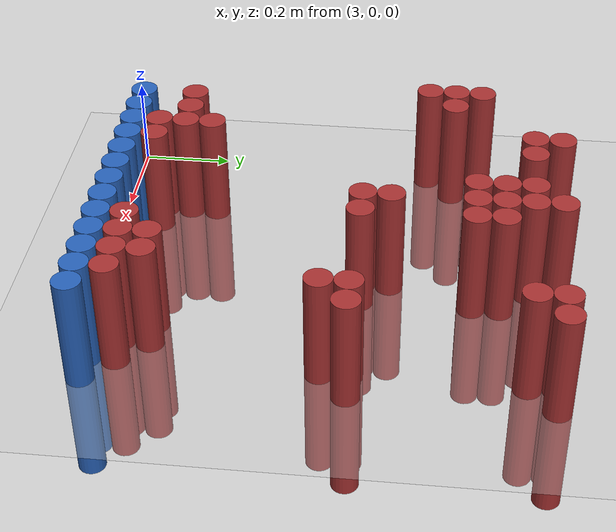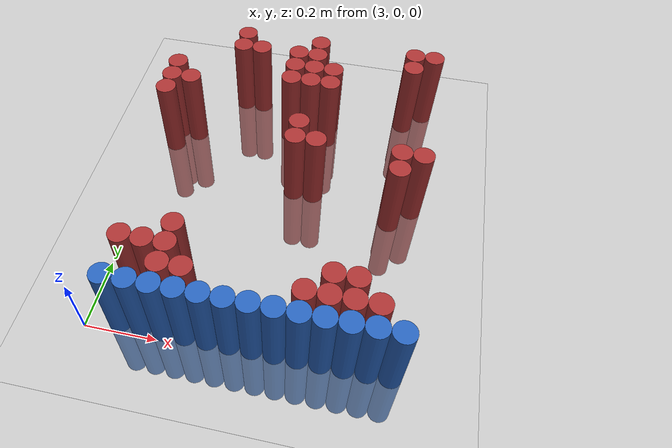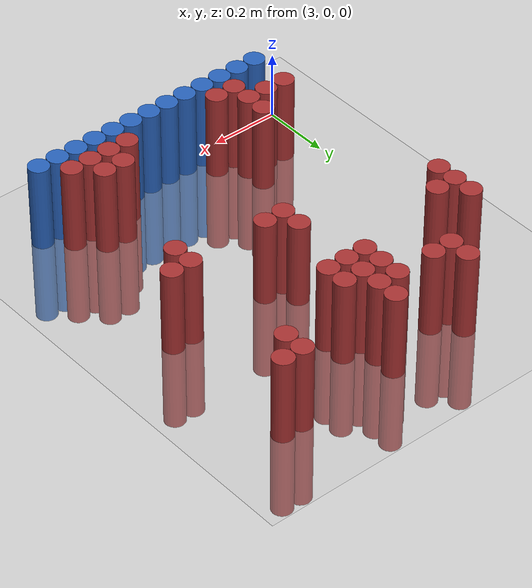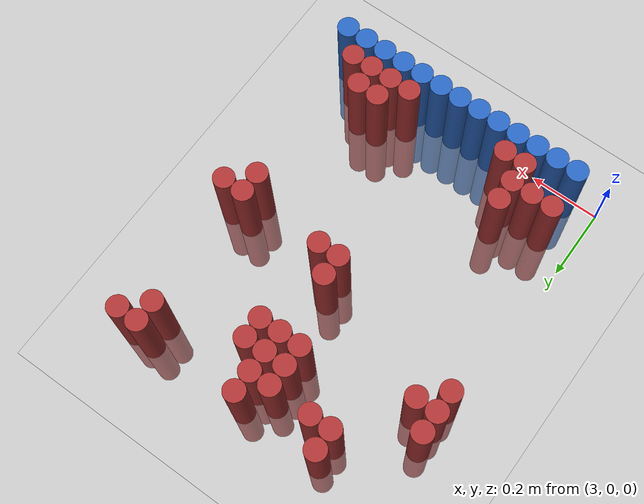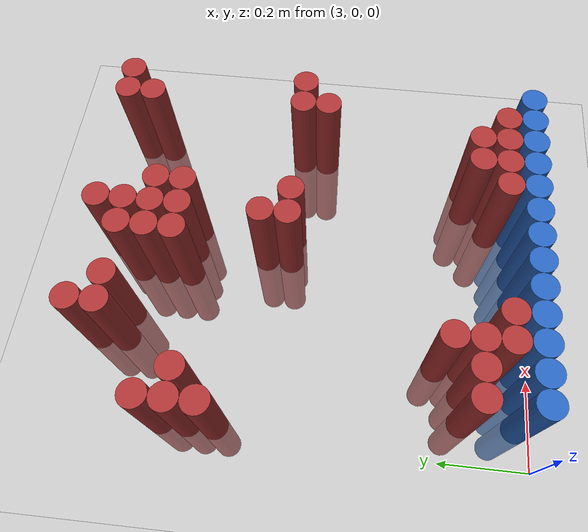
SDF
<sdf version="1.6">
 <world name="default">
  <model name="ground_plane">
   <static>1</static>
   <link name="link">
    <collision name="collision">
     <geometry><plane><normal>0 0 1</normal><size>100 100</size></plane></geometry>
     <surface><friction><ode><mu>100</mu><mu2>50</mu2></ode></friction></surface>
    </collision>
    <visual name="visual">
     <cast_shadows>0</cast_shadows>
     <geometry><plane><normal>0 0 1</normal><size>100 100</size></plane></geometry>
     <material>
      <script><uri>file://media/materials/scripts/gazebo.material</uri><name>Gazebo/Grey</name></script>
     </material>
    </visual>
   </link>
  </model>
  <model name="unit_cylinder_233">
   <static>1</static>
   <pose>3.210000 0.990000 0.000000 0.000000 0.000000 0.000000</pose>
   <link name="link">
    <inertial>
     <mass>1</mass>
     <inertia><ixx>0.145833</ixx><ixy>0</ixy><ixz>0</ixz><iyy>0.145833</iyy><iyz>0</iyz><izz>0.125</izz></inertia>
    </inertial>
    <collision name="collision">
     <geometry><cylinder><radius>0.030000</radius><length>0.5</length></cylinder></geometry>
    </collision>
    <visual name="visual">
     <geometry><cylinder><radius>0.030000</radius><length>0.5</length></cylinder></geometry>
     <material>
      <ambient>0.648000 0.192000 0.192000 1</ambient>
      <diffuse>0.648000 0.192000 0.192000 1</diffuse>
     </material>
     <material>
      <script><name>Gazebo/Grey</name><uri>file://media/materials/scripts/gazebo.material</uri></script>
     </material>
    </visual>
   </link>
  </model>
  <model name="unit_cylinder_234">
   <static>1</static>
   <pose>3.450000 0.990000 0.000000 0.000000 0.000000 0.000000</pose>
   <link name="link">
    <inertial>
     <mass>1</mass>
     <inertia><ixx>0.145833</ixx><ixy>0</ixy><ixz>0</ixz><iyy>0.145833</iyy><iyz>0</iyz><izz>0.125</izz></inertia>
    </inertial>
    <collision name="collision">
     <geometry><cylinder><radius>0.030000</radius><length>0.5</length></cylinder></geometry>
    </collision>
    <visual name="visual">
     <geometry><cylinder><radius>0.030000</radius><length>0.5</length></cylinder></geometry>
     <material>
      <ambient>0.648000 0.192000 0.192000 1</ambient>
      <diffuse>0.648000 0.192000 0.192000 1</diffuse>
     </material>
     <material>
      <script><name>Gazebo/Grey</name><uri>file://media/materials/scripts/gazebo.material</uri></script>
     </material>
    </visual>
   </link>
  </model>
  <model name="unit_cylinder_235">
   <static>1</static>
   <pose>3.750000 0.990000 0.000000 0.000000 0.000000 0.000000</pose>
   <link name="link">
    <inertial>
     <mass>1</mass>
     <inertia><ixx>0.145833</ixx><ixy>0</ixy><ixz>0</ixz><iyy>0.145833</iyy><iyz>0</iyz><izz>0.125</izz></inertia>
    </inertial>
    <collision name="collision">
     <geometry><cylinder><radius>0.030000</radius><length>0.5</length></cylinder></geometry>
    </collision>
    <visual name="visual">
     <geometry><cylinder><radius>0.030000</radius><length>0.5</length></cylinder></geometry>
     <material>
      <ambient>0.648000 0.192000 0.192000 1</ambient>
      <diffuse>0.648000 0.192000 0.192000 1</diffuse>
     </material>
     <material>
      <script><name>Gazebo/Grey</name><uri>file://media/materials/scripts/gazebo.material</uri></script>
     </material>
    </visual>
   </link>
  </model>
  <model name="unit_cylinder_236">
   <static>1</static>
   <pose>3.810000 0.990000 0.000000 0.000000 0.000000 0.000000</pose>
   <link name="link">
    <inertial>
     <mass>1</mass>
     <inertia><ixx>0.145833</ixx><ixy>0</ixy><ixz>0</ixz><iyy>0.145833</iyy><iyz>0</iyz><izz>0.125</izz></inertia>
    </inertial>
    <collision name="collision">
     <geometry><cylinder><radius>0.030000</radius><length>0.5</length></cylinder></geometry>
    </collision>
    <visual name="visual">
     <geometry><cylinder><radius>0.030000</radius><length>0.5</length></cylinder></geometry>
     <material>
      <ambient>0.648000 0.192000 0.192000 1</ambient>
      <diffuse>0.648000 0.192000 0.192000 1</diffuse>
     </material>
     <material>
      <script><name>Gazebo/Grey</name><uri>file://media/materials/scripts/gazebo.material</uri></script>
     </material>
    </visual>
   </link>
  </model>
  <model name="unit_cylinder_243">
   <static>1</static>
   <pose>3.210000 0.930000 0.000000 0.000000 0.000000 0.000000</pose>
   <link name="link">
    <inertial>
     <mass>1</mass>
     <inertia><ixx>0.145833</ixx><ixy>0</ixy><ixz>0</ixz><iyy>0.145833</iyy><iyz>0</iyz><izz>0.125</izz></inertia>
    </inertial>
    <collision name="collision">
     <geometry><cylinder><radius>0.030000</radius><length>0.5</length></cylinder></geometry>
    </collision>
    <visual name="visual">
     <geometry><cylinder><radius>0.030000</radius><length>0.5</length></cylinder></geometry>
     <material>
      <ambient>0.648000 0.192000 0.192000 1</ambient>
      <diffuse>0.648000 0.192000 0.192000 1</diffuse>
     </material>
     <material>
      <script><name>Gazebo/Grey</name><uri>file://media/materials/scripts/gazebo.material</uri></script>
     </material>
    </visual>
   </link>
  </model>
  <model name="unit_cylinder_244">
   <static>1</static>
   <pose>3.270000 0.930000 0.000000 0.000000 0.000000 0.000000</pose>
   <link name="link">
    <inertial>
     <mass>1</mass>
     <inertia><ixx>0.145833</ixx><ixy>0</ixy><ixz>0</ixz><iyy>0.145833</iyy><iyz>0</iyz><izz>0.125</izz></inertia>
    </inertial>
    <collision name="collision">
     <geometry><cylinder><radius>0.030000</radius><length>0.5</length></cylinder></geometry>
    </collision>
    <visual name="visual">
     <geometry><cylinder><radius>0.030000</radius><length>0.5</length></cylinder></geometry>
     <material>
      <ambient>0.648000 0.192000 0.192000 1</ambient>
      <diffuse>0.648000 0.192000 0.192000 1</diffuse>
     </material>
     <material>
      <script><name>Gazebo/Grey</name><uri>file://media/materials/scripts/gazebo.material</uri></script>
     </material>
    </visual>
   </link>
  </model>
  <model name="unit_cylinder_245">
   <static>1</static>
   <pose>3.390000 0.930000 0.000000 0.000000 0.000000 0.000000</pose>
   <link name="link">
    <inertial>
     <mass>1</mass>
     <inertia><ixx>0.145833</ixx><ixy>0</ixy><ixz>0</ixz><iyy>0.145833</iyy><iyz>0</iyz><izz>0.125</izz></inertia>
    </inertial>
    <collision name="collision">
     <geometry><cylinder><radius>0.030000</radius><length>0.5</length></cylinder></geometry>
    </collision>
    <visual name="visual">
     <geometry><cylinder><radius>0.030000</radius><length>0.5</length></cylinder></geometry>
     <material>
      <ambient>0.648000 0.192000 0.192000 1</ambient>
      <diffuse>0.648000 0.192000 0.192000 1</diffuse>
     </material>
     <material>
      <script><name>Gazebo/Grey</name><uri>file://media/materials/scripts/gazebo.material</uri></script>
     </material>
    </visual>
   </link>
  </model>
  <model name="unit_cylinder_246">
   <static>1</static>
   <pose>3.450000 0.930000 0.000000 0.000000 0.000000 0.000000</pose>
   <link name="link">
    <inertial>
     <mass>1</mass>
     <inertia><ixx>0.145833</ixx><ixy>0</ixy><ixz>0</ixz><iyy>0.145833</iyy><iyz>0</iyz><izz>0.125</izz></inertia>
    </inertial>
    <collision name="collision">
     <geometry><cylinder><radius>0.030000</radius><length>0.5</length></cylinder></geometry>
    </collision>
    <visual name="visual">
     <geometry><cylinder><radius>0.030000</radius><length>0.5</length></cylinder></geometry>
     <material>
      <ambient>0.648000 0.192000 0.192000 1</ambient>
      <diffuse>0.648000 0.192000 0.192000 1</diffuse>
     </material>
     <material>
      <script><name>Gazebo/Grey</name><uri>file://media/materials/scripts/gazebo.material</uri></script>
     </material>
    </visual>
   </link>
  </model>
  <model name="unit_cylinder_247">
   <static>1</static>
   <pose>3.750000 0.930000 0.000000 0.000000 0.000000 0.000000</pose>
   <link name="link">
    <inertial>
     <mass>1</mass>
     <inertia><ixx>0.145833</ixx><ixy>0</ixy><ixz>0</ixz><iyy>0.145833</iyy><iyz>0</iyz><izz>0.125</izz></inertia>
    </inertial>
    <collision name="collision">
     <geometry><cylinder><radius>0.030000</radius><length>0.5</length></cylinder></geometry>
    </collision>
    <visual name="visual">
     <geometry><cylinder><radius>0.030000</radius><length>0.5</length></cylinder></geometry>
     <material>
      <ambient>0.648000 0.192000 0.192000 1</ambient>
      <diffuse>0.648000 0.192000 0.192000 1</diffuse>
     </material>
     <material>
      <script><name>Gazebo/Grey</name><uri>file://media/materials/scripts/gazebo.material</uri></script>
     </material>
    </visual>
   </link>
  </model>
  <model name="unit_cylinder_252">
   <static>1</static>
   <pose>3.390000 0.870000 0.000000 0.000000 0.000000 0.000000</pose>
   <link name="link">
    <inertial>
     <mass>1</mass>
     <inertia><ixx>0.145833</ixx><ixy>0</ixy><ixz>0</ixz><iyy>0.145833</iyy><iyz>0</iyz><izz>0.125</izz></inertia>
    </inertial>
    <collision name="collision">
     <geometry><cylinder><radius>0.030000</radius><length>0.5</length></cylinder></geometry>
    </collision>
    <visual name="visual">
     <geometry><cylinder><radius>0.030000</radius><length>0.5</length></cylinder></geometry>
     <material>
      <ambient>0.648000 0.192000 0.192000 1</ambient>
      <diffuse>0.648000 0.192000 0.192000 1</diffuse>
     </material>
     <material>
      <script><name>Gazebo/Grey</name><uri>file://media/materials/scripts/gazebo.material</uri></script>
     </material>
    </visual>
   </link>
  </model>
  <model name="unit_cylinder_253">
   <static>1</static>
   <pose>3.450000 0.870000 0.000000 0.000000 0.000000 0.000000</pose>
   <link name="link">
    <inertial>
     <mass>1</mass>
     <inertia><ixx>0.145833</ixx><ixy>0</ixy><ixz>0</ixz><iyy>0.145833</iyy><iyz>0</iyz><izz>0.125</izz></inertia>
    </inertial>
    <collision name="collision">
     <geometry><cylinder><radius>0.030000</radius><length>0.5</length></cylinder></geometry>
    </collision>
    <visual name="visual">
     <geometry><cylinder><radius>0.030000</radius><length>0.5</length></cylinder></geometry>
     <material>
      <ambient>0.648000 0.192000 0.192000 1</ambient>
      <diffuse>0.648000 0.192000 0.192000 1</diffuse>
     </material>
     <material>
      <script><name>Gazebo/Grey</name><uri>file://media/materials/scripts/gazebo.material</uri></script>
     </material>
    </visual>
   </link>
  </model>
  <model name="unit_cylinder_254">
   <static>1</static>
   <pose>3.510000 0.870000 0.000000 0.000000 0.000000 0.000000</pose>
   <link name="link">
    <inertial>
     <mass>1</mass>
     <inertia><ixx>0.145833</ixx><ixy>0</ixy><ixz>0</ixz><iyy>0.145833</iyy><iyz>0</iyz><izz>0.125</izz></inertia>
    </inertial>
    <collision name="collision">
     <geometry><cylinder><radius>0.030000</radius><length>0.5</length></cylinder></geometry>
    </collision>
    <visual name="visual">
     <geometry><cylinder><radius>0.030000</radius><length>0.5</length></cylinder></geometry>
     <material>
      <ambient>0.648000 0.192000 0.192000 1</ambient>
      <diffuse>0.648000 0.192000 0.192000 1</diffuse>
     </material>
     <material>
      <script><name>Gazebo/Grey</name><uri>file://media/materials/scripts/gazebo.material</uri></script>
     </material>
    </visual>
   </link>
  </model>
  <model name="unit_cylinder_257">
   <static>1</static>
   <pose>3.030000 0.810000 0.000000 0.000000 0.000000 0.000000</pose>
   <link name="link">
    <inertial>
     <mass>1</mass>
     <inertia><ixx>0.145833</ixx><ixy>0</ixy><ixz>0</ixz><iyy>0.145833</iyy><iyz>0</iyz><izz>0.125</izz></inertia>
    </inertial>
    <collision name="collision">
     <geometry><cylinder><radius>0.030000</radius><length>0.5</length></cylinder></geometry>
    </collision>
    <visual name="visual">
     <geometry><cylinder><radius>0.030000</radius><length>0.5</length></cylinder></geometry>
     <material>
      <ambient>0.648000 0.192000 0.192000 1</ambient>
      <diffuse>0.648000 0.192000 0.192000 1</diffuse>
     </material>
     <material>
      <script><name>Gazebo/Grey</name><uri>file://media/materials/scripts/gazebo.material</uri></script>
     </material>
    </visual>
   </link>
  </model>
  <model name="unit_cylinder_258">
   <static>1</static>
   <pose>3.390000 0.810000 0.000000 0.000000 0.000000 0.000000</pose>
   <link name="link">
    <inertial>
     <mass>1</mass>
     <inertia><ixx>0.145833</ixx><ixy>0</ixy><ixz>0</ixz><iyy>0.145833</iyy><iyz>0</iyz><izz>0.125</izz></inertia>
    </inertial>
    <collision name="collision">
     <geometry><cylinder><radius>0.030000</radius><length>0.5</length></cylinder></geometry>
    </collision>
    <visual name="visual">
     <geometry><cylinder><radius>0.030000</radius><length>0.5</length></cylinder></geometry>
     <material>
      <ambient>0.648000 0.192000 0.192000 1</ambient>
      <diffuse>0.648000 0.192000 0.192000 1</diffuse>
     </material>
     <material>
      <script><name>Gazebo/Grey</name><uri>file://media/materials/scripts/gazebo.material</uri></script>
     </material>
    </visual>
   </link>
  </model>
  <model name="unit_cylinder_259">
   <static>1</static>
   <pose>3.450000 0.810000 0.000000 0.000000 0.000000 0.000000</pose>
   <link name="link">
    <inertial>
     <mass>1</mass>
     <inertia><ixx>0.145833</ixx><ixy>0</ixy><ixz>0</ixz><iyy>0.145833</iyy><iyz>0</iyz><izz>0.125</izz></inertia>
    </inertial>
    <collision name="collision">
     <geometry><cylinder><radius>0.030000</radius><length>0.5</length></cylinder></geometry>
    </collision>
    <visual name="visual">
     <geometry><cylinder><radius>0.030000</radius><length>0.5</length></cylinder></geometry>
     <material>
      <ambient>0.648000 0.192000 0.192000 1</ambient>
      <diffuse>0.648000 0.192000 0.192000 1</diffuse>
     </material>
     <material>
      <script><name>Gazebo/Grey</name><uri>file://media/materials/scripts/gazebo.material</uri></script>
     </material>
    </visual>
   </link>
  </model>
  <model name="unit_cylinder_260">
   <static>1</static>
   <pose>3.510000 0.810000 0.000000 0.000000 0.000000 0.000000</pose>
   <link name="link">
    <inertial>
     <mass>1</mass>
     <inertia><ixx>0.145833</ixx><ixy>0</ixy><ixz>0</ixz><iyy>0.145833</iyy><iyz>0</iyz><izz>0.125</izz></inertia>
    </inertial>
    <collision name="collision">
     <geometry><cylinder><radius>0.030000</radius><length>0.5</length></cylinder></geometry>
    </collision>
    <visual name="visual">
     <geometry><cylinder><radius>0.030000</radius><length>0.5</length></cylinder></geometry>
     <material>
      <ambient>0.648000 0.192000 0.192000 1</ambient>
      <diffuse>0.648000 0.192000 0.192000 1</diffuse>
     </material>
     <material>
      <script><name>Gazebo/Grey</name><uri>file://media/materials/scripts/gazebo.material</uri></script>
     </material>
    </visual>
   </link>
  </model>
  <model name="unit_cylinder_263">
   <static>1</static>
   <pose>3.030000 0.750000 0.000000 0.000000 0.000000 0.000000</pose>
   <link name="link">
    <inertial>
     <mass>1</mass>
     <inertia><ixx>0.145833</ixx><ixy>0</ixy><ixz>0</ixz><iyy>0.145833</iyy><iyz>0</iyz><izz>0.125</izz></inertia>
    </inertial>
    <collision name="collision">
     <geometry><cylinder><radius>0.030000</radius><length>0.5</length></cylinder></geometry>
    </collision>
    <visual name="visual">
     <geometry><cylinder><radius>0.030000</radius><length>0.5</length></cylinder></geometry>
     <material>
      <ambient>0.648000 0.192000 0.192000 1</ambient>
      <diffuse>0.648000 0.192000 0.192000 1</diffuse>
     </material>
     <material>
      <script><name>Gazebo/Grey</name><uri>file://media/materials/scripts/gazebo.material</uri></script>
     </material>
    </visual>
   </link>
  </model>
  <model name="unit_cylinder_264">
   <static>1</static>
   <pose>3.090000 0.750000 0.000000 0.000000 0.000000 0.000000</pose>
   <link name="link">
    <inertial>
     <mass>1</mass>
     <inertia><ixx>0.145833</ixx><ixy>0</ixy><ixz>0</ixz><iyy>0.145833</iyy><iyz>0</iyz><izz>0.125</izz></inertia>
    </inertial>
    <collision name="collision">
     <geometry><cylinder><radius>0.030000</radius><length>0.5</length></cylinder></geometry>
    </collision>
    <visual name="visual">
     <geometry><cylinder><radius>0.030000</radius><length>0.5</length></cylinder></geometry>
     <material>
      <ambient>0.648000 0.192000 0.192000 1</ambient>
      <diffuse>0.648000 0.192000 0.192000 1</diffuse>
     </material>
     <material>
      <script><name>Gazebo/Grey</name><uri>file://media/materials/scripts/gazebo.material</uri></script>
     </material>
    </visual>
   </link>
  </model>
  <model name="unit_cylinder_268">
   <static>1</static>
   <pose>3.030000 0.690000 0.000000 0.000000 0.000000 0.000000</pose>
   <link name="link">
    <inertial>
     <mass>1</mass>
     <inertia><ixx>0.145833</ixx><ixy>0</ixy><ixz>0</ixz><iyy>0.145833</iyy><iyz>0</iyz><izz>0.125</izz></inertia>
    </inertial>
    <collision name="collision">
     <geometry><cylinder><radius>0.030000</radius><length>0.5</length></cylinder></geometry>
    </collision>
    <visual name="visual">
     <geometry><cylinder><radius>0.030000</radius><length>0.5</length></cylinder></geometry>
     <material>
      <ambient>0.648000 0.192000 0.192000 1</ambient>
      <diffuse>0.648000 0.192000 0.192000 1</diffuse>
     </material>
     <material>
      <script><name>Gazebo/Grey</name><uri>file://media/materials/scripts/gazebo.material</uri></script>
     </material>
    </visual>
   </link>
  </model>
  <model name="unit_cylinder_270">
   <static>1</static>
   <pose>3.450000 0.630000 0.000000 0.000000 0.000000 0.000000</pose>
   <link name="link">
    <inertial>
     <mass>1</mass>
     <inertia><ixx>0.145833</ixx><ixy>0</ixy><ixz>0</ixz><iyy>0.145833</iyy><iyz>0</iyz><izz>0.125</izz></inertia>
    </inertial>
    <collision name="collision">
     <geometry><cylinder><radius>0.030000</radius><length>0.5</length></cylinder></geometry>
    </collision>
    <visual name="visual">
     <geometry><cylinder><radius>0.030000</radius><length>0.5</length></cylinder></geometry>
     <material>
      <ambient>0.648000 0.192000 0.192000 1</ambient>
      <diffuse>0.648000 0.192000 0.192000 1</diffuse>
     </material>
     <material>
      <script><name>Gazebo/Grey</name><uri>file://media/materials/scripts/gazebo.material</uri></script>
     </material>
    </visual>
   </link>
  </model>
  <model name="unit_cylinder_271">
   <static>1</static>
   <pose>3.450000 0.570000 0.000000 0.000000 0.000000 0.000000</pose>
   <link name="link">
    <inertial>
     <mass>1</mass>
     <inertia><ixx>0.145833</ixx><ixy>0</ixy><ixz>0</ixz><iyy>0.145833</iyy><iyz>0</iyz><izz>0.125</izz></inertia>
    </inertial>
    <collision name="collision">
     <geometry><cylinder><radius>0.030000</radius><length>0.5</length></cylinder></geometry>
    </collision>
    <visual name="visual">
     <geometry><cylinder><radius>0.030000</radius><length>0.5</length></cylinder></geometry>
     <material>
      <ambient>0.648000 0.192000 0.192000 1</ambient>
      <diffuse>0.648000 0.192000 0.192000 1</diffuse>
     </material>
     <material>
      <script><name>Gazebo/Grey</name><uri>file://media/materials/scripts/gazebo.material</uri></script>
     </material>
    </visual>
   </link>
  </model>
  <model name="unit_cylinder_272">
   <static>1</static>
   <pose>3.510000 0.570000 0.000000 0.000000 0.000000 0.000000</pose>
   <link name="link">
    <inertial>
     <mass>1</mass>
     <inertia><ixx>0.145833</ixx><ixy>0</ixy><ixz>0</ixz><iyy>0.145833</iyy><iyz>0</iyz><izz>0.125</izz></inertia>
    </inertial>
    <collision name="collision">
     <geometry><cylinder><radius>0.030000</radius><length>0.5</length></cylinder></geometry>
    </collision>
    <visual name="visual">
     <geometry><cylinder><radius>0.030000</radius><length>0.5</length></cylinder></geometry>
     <material>
      <ambient>0.648000 0.192000 0.192000 1</ambient>
      <diffuse>0.648000 0.192000 0.192000 1</diffuse>
     </material>
     <material>
      <script><name>Gazebo/Grey</name><uri>file://media/materials/scripts/gazebo.material</uri></script>
     </material>
    </visual>
   </link>
  </model>
  <model name="unit_cylinder_273">
   <static>1</static>
   <pose>3.750000 0.570000 0.000000 0.000000 0.000000 0.000000</pose>
   <link name="link">
    <inertial>
     <mass>1</mass>
     <inertia><ixx>0.145833</ixx><ixy>0</ixy><ixz>0</ixz><iyy>0.145833</iyy><iyz>0</iyz><izz>0.125</izz></inertia>
    </inertial>
    <collision name="collision">
     <geometry><cylinder><radius>0.030000</radius><length>0.5</length></cylinder></geometry>
    </collision>
    <visual name="visual">
     <geometry><cylinder><radius>0.030000</radius><length>0.5</length></cylinder></geometry>
     <material>
      <ambient>0.648000 0.192000 0.192000 1</ambient>
      <diffuse>0.648000 0.192000 0.192000 1</diffuse>
     </material>
     <material>
      <script><name>Gazebo/Grey</name><uri>file://media/materials/scripts/gazebo.material</uri></script>
     </material>
    </visual>
   </link>
  </model>
  <model name="unit_cylinder_274">
   <static>1</static>
   <pose>3.810000 0.570000 0.000000 0.000000 0.000000 0.000000</pose>
   <link name="link">
    <inertial>
     <mass>1</mass>
     <inertia><ixx>0.145833</ixx><ixy>0</ixy><ixz>0</ixz><iyy>0.145833</iyy><iyz>0</iyz><izz>0.125</izz></inertia>
    </inertial>
    <collision name="collision">
     <geometry><cylinder><radius>0.030000</radius><length>0.5</length></cylinder></geometry>
    </collision>
    <visual name="visual">
     <geometry><cylinder><radius>0.030000</radius><length>0.5</length></cylinder></geometry>
     <material>
      <ambient>0.648000 0.192000 0.192000 1</ambient>
      <diffuse>0.648000 0.192000 0.192000 1</diffuse>
     </material>
     <material>
      <script><name>Gazebo/Grey</name><uri>file://media/materials/scripts/gazebo.material</uri></script>
     </material>
    </visual>
   </link>
  </model>
  <model name="unit_cylinder_275">
   <static>1</static>
   <pose>3.750000 0.510000 0.000000 0.000000 0.000000 0.000000</pose>
   <link name="link">
    <inertial>
     <mass>1</mass>
     <inertia><ixx>0.145833</ixx><ixy>0</ixy><ixz>0</ixz><iyy>0.145833</iyy><iyz>0</iyz><izz>0.125</izz></inertia>
    </inertial>
    <collision name="collision">
     <geometry><cylinder><radius>0.030000</radius><length>0.5</length></cylinder></geometry>
    </collision>
    <visual name="visual">
     <geometry><cylinder><radius>0.030000</radius><length>0.5</length></cylinder></geometry>
     <material>
      <ambient>0.648000 0.192000 0.192000 1</ambient>
      <diffuse>0.648000 0.192000 0.192000 1</diffuse>
     </material>
     <material>
      <script><name>Gazebo/Grey</name><uri>file://media/materials/scripts/gazebo.material</uri></script>
     </material>
    </visual>
   </link>
  </model>
  <model name="unit_cylinder_290">
   <static>1</static>
   <pose>3.210000 0.210000 0.000000 0.000000 0.000000 0.000000</pose>
   <link name="link">
    <inertial>
     <mass>1</mass>
     <inertia><ixx>0.145833</ixx><ixy>0</ixy><ixz>0</ixz><iyy>0.145833</iyy><iyz>0</iyz><izz>0.125</izz></inertia>
    </inertial>
    <collision name="collision">
     <geometry><cylinder><radius>0.030000</radius><length>0.5</length></cylinder></geometry>
    </collision>
    <visual name="visual">
     <geometry><cylinder><radius>0.030000</radius><length>0.5</length></cylinder></geometry>
     <material>
      <ambient>0.648000 0.192000 0.192000 1</ambient>
      <diffuse>0.648000 0.192000 0.192000 1</diffuse>
     </material>
     <material>
      <script><name>Gazebo/Grey</name><uri>file://media/materials/scripts/gazebo.material</uri></script>
     </material>
    </visual>
   </link>
  </model>
  <model name="unit_cylinder_298">
   <static>1</static>
   <pose>3.090000 0.150000 0.000000 0.000000 0.000000 0.000000</pose>
   <link name="link">
    <inertial>
     <mass>1</mass>
     <inertia><ixx>0.145833</ixx><ixy>0</ixy><ixz>0</ixz><iyy>0.145833</iyy><iyz>0</iyz><izz>0.125</izz></inertia>
    </inertial>
    <collision name="collision">
     <geometry><cylinder><radius>0.030000</radius><length>0.5</length></cylinder></geometry>
    </collision>
    <visual name="visual">
     <geometry><cylinder><radius>0.030000</radius><length>0.5</length></cylinder></geometry>
     <material>
      <ambient>0.648000 0.192000 0.192000 1</ambient>
      <diffuse>0.648000 0.192000 0.192000 1</diffuse>
     </material>
     <material>
      <script><name>Gazebo/Grey</name><uri>file://media/materials/scripts/gazebo.material</uri></script>
     </material>
    </visual>
   </link>
  </model>
  <model name="unit_cylinder_299">
   <static>1</static>
   <pose>3.150000 0.150000 0.000000 0.000000 0.000000 0.000000</pose>
   <link name="link">
    <inertial>
     <mass>1</mass>
     <inertia><ixx>0.145833</ixx><ixy>0</ixy><ixz>0</ixz><iyy>0.145833</iyy><iyz>0</iyz><izz>0.125</izz></inertia>
    </inertial>
    <collision name="collision">
     <geometry><cylinder><radius>0.030000</radius><length>0.5</length></cylinder></geometry>
    </collision>
    <visual name="visual">
     <geometry><cylinder><radius>0.030000</radius><length>0.5</length></cylinder></geometry>
     <material>
      <ambient>0.648000 0.192000 0.192000 1</ambient>
      <diffuse>0.648000 0.192000 0.192000 1</diffuse>
     </material>
     <material>
      <script><name>Gazebo/Grey</name><uri>file://media/materials/scripts/gazebo.material</uri></script>
     </material>
    </visual>
   </link>
  </model>
  <model name="unit_cylinder_300">
   <static>1</static>
   <pose>3.210000 0.150000 0.000000 0.000000 0.000000 0.000000</pose>
   <link name="link">
    <inertial>
     <mass>1</mass>
     <inertia><ixx>0.145833</ixx><ixy>0</ixy><ixz>0</ixz><iyy>0.145833</iyy><iyz>0</iyz><izz>0.125</izz></inertia>
    </inertial>
    <collision name="collision">
     <geometry><cylinder><radius>0.030000</radius><length>0.5</length></cylinder></geometry>
    </collision>
    <visual name="visual">
     <geometry><cylinder><radius>0.030000</radius><length>0.5</length></cylinder></geometry>
     <material>
      <ambient>0.648000 0.192000 0.192000 1</ambient>
      <diffuse>0.648000 0.192000 0.192000 1</diffuse>
     </material>
     <material>
      <script><name>Gazebo/Grey</name><uri>file://media/materials/scripts/gazebo.material</uri></script>
     </material>
    </visual>
   </link>
  </model>
  <model name="unit_cylinder_301">
   <static>1</static>
   <pose>3.630000 0.150000 0.000000 0.000000 0.000000 0.000000</pose>
   <link name="link">
    <inertial>
     <mass>1</mass>
     <inertia><ixx>0.145833</ixx><ixy>0</ixy><ixz>0</ixz><iyy>0.145833</iyy><iyz>0</iyz><izz>0.125</izz></inertia>
    </inertial>
    <collision name="collision">
     <geometry><cylinder><radius>0.030000</radius><length>0.5</length></cylinder></geometry>
    </collision>
    <visual name="visual">
     <geometry><cylinder><radius>0.030000</radius><length>0.5</length></cylinder></geometry>
     <material>
      <ambient>0.648000 0.192000 0.192000 1</ambient>
      <diffuse>0.648000 0.192000 0.192000 1</diffuse>
     </material>
     <material>
      <script><name>Gazebo/Grey</name><uri>file://media/materials/scripts/gazebo.material</uri></script>
     </material>
    </visual>
   </link>
  </model>
  <model name="unit_cylinder_302">
   <static>1</static>
   <pose>3.690000 0.150000 0.000000 0.000000 0.000000 0.000000</pose>
   <link name="link">
    <inertial>
     <mass>1</mass>
     <inertia><ixx>0.145833</ixx><ixy>0</ixy><ixz>0</ixz><iyy>0.145833</iyy><iyz>0</iyz><izz>0.125</izz></inertia>
    </inertial>
    <collision name="collision">
     <geometry><cylinder><radius>0.030000</radius><length>0.5</length></cylinder></geometry>
    </collision>
    <visual name="visual">
     <geometry><cylinder><radius>0.030000</radius><length>0.5</length></cylinder></geometry>
     <material>
      <ambient>0.648000 0.192000 0.192000 1</ambient>
      <diffuse>0.648000 0.192000 0.192000 1</diffuse>
     </material>
     <material>
      <script><name>Gazebo/Grey</name><uri>file://media/materials/scripts/gazebo.material</uri></script>
     </material>
    </visual>
   </link>
  </model>
  <model name="unit_cylinder_314">
   <static>1</static>
   <pose>3.210000 0.090000 0.000000 0.000000 0.000000 0.000000</pose>
   <link name="link">
    <inertial>
     <mass>1</mass>
     <inertia><ixx>0.145833</ixx><ixy>0</ixy><ixz>0</ixz><iyy>0.145833</iyy><iyz>0</iyz><izz>0.125</izz></inertia>
    </inertial>
    <collision name="collision">
     <geometry><cylinder><radius>0.030000</radius><length>0.5</length></cylinder></geometry>
    </collision>
    <visual name="visual">
     <geometry><cylinder><radius>0.030000</radius><length>0.5</length></cylinder></geometry>
     <material>
      <ambient>0.648000 0.192000 0.192000 1</ambient>
      <diffuse>0.648000 0.192000 0.192000 1</diffuse>
     </material>
     <material>
      <script><name>Gazebo/Grey</name><uri>file://media/materials/scripts/gazebo.material</uri></script>
     </material>
    </visual>
   </link>
  </model>
  <model name="unit_cylinder_315">
   <static>1</static>
   <pose>3.270000 0.090000 0.000000 0.000000 0.000000 0.000000</pose>
   <link name="link">
    <inertial>
     <mass>1</mass>
     <inertia><ixx>0.145833</ixx><ixy>0</ixy><ixz>0</ixz><iyy>0.145833</iyy><iyz>0</iyz><izz>0.125</izz></inertia>
    </inertial>
    <collision name="collision">
     <geometry><cylinder><radius>0.030000</radius><length>0.5</length></cylinder></geometry>
    </collision>
    <visual name="visual">
     <geometry><cylinder><radius>0.030000</radius><length>0.5</length></cylinder></geometry>
     <material>
      <ambient>0.648000 0.192000 0.192000 1</ambient>
      <diffuse>0.648000 0.192000 0.192000 1</diffuse>
     </material>
     <material>
      <script><name>Gazebo/Grey</name><uri>file://media/materials/scripts/gazebo.material</uri></script>
     </material>
    </visual>
   </link>
  </model>
  <model name="unit_cylinder_316">
   <static>1</static>
   <pose>3.570000 0.090000 0.000000 0.000000 0.000000 0.000000</pose>
   <link name="link">
    <inertial>
     <mass>1</mass>
     <inertia><ixx>0.145833</ixx><ixy>0</ixy><ixz>0</ixz><iyy>0.145833</iyy><iyz>0</iyz><izz>0.125</izz></inertia>
    </inertial>
    <collision name="collision">
     <geometry><cylinder><radius>0.030000</radius><length>0.5</length></cylinder></geometry>
    </collision>
    <visual name="visual">
     <geometry><cylinder><radius>0.030000</radius><length>0.5</length></cylinder></geometry>
     <material>
      <ambient>0.648000 0.192000 0.192000 1</ambient>
      <diffuse>0.648000 0.192000 0.192000 1</diffuse>
     </material>
     <material>
      <script><name>Gazebo/Grey</name><uri>file://media/materials/scripts/gazebo.material</uri></script>
     </material>
    </visual>
   </link>
  </model>
  <model name="unit_cylinder_317">
   <static>1</static>
   <pose>3.630000 0.090000 0.000000 0.000000 0.000000 0.000000</pose>
   <link name="link">
    <inertial>
     <mass>1</mass>
     <inertia><ixx>0.145833</ixx><ixy>0</ixy><ixz>0</ixz><iyy>0.145833</iyy><iyz>0</iyz><izz>0.125</izz></inertia>
    </inertial>
    <collision name="collision">
     <geometry><cylinder><radius>0.030000</radius><length>0.5</length></cylinder></geometry>
    </collision>
    <visual name="visual">
     <geometry><cylinder><radius>0.030000</radius><length>0.5</length></cylinder></geometry>
     <material>
      <ambient>0.648000 0.192000 0.192000 1</ambient>
      <diffuse>0.648000 0.192000 0.192000 1</diffuse>
     </material>
     <material>
      <script><name>Gazebo/Grey</name><uri>file://media/materials/scripts/gazebo.material</uri></script>
     </material>
    </visual>
   </link>
  </model>
  <model name="unit_cylinder_318">
   <static>1</static>
   <pose>3.690000 0.090000 0.000000 0.000000 0.000000 0.000000</pose>
   <link name="link">
    <inertial>
     <mass>1</mass>
     <inertia><ixx>0.145833</ixx><ixy>0</ixy><ixz>0</ixz><iyy>0.145833</iyy><iyz>0</iyz><izz>0.125</izz></inertia>
    </inertial>
    <collision name="collision">
     <geometry><cylinder><radius>0.030000</radius><length>0.5</length></cylinder></geometry>
    </collision>
    <visual name="visual">
     <geometry><cylinder><radius>0.030000</radius><length>0.5</length></cylinder></geometry>
     <material>
      <ambient>0.648000 0.192000 0.192000 1</ambient>
      <diffuse>0.648000 0.192000 0.192000 1</diffuse>
     </material>
     <material>
      <script><name>Gazebo/Grey</name><uri>file://media/materials/scripts/gazebo.material</uri></script>
     </material>
    </visual>
   </link>
  </model>
  <model name="unit_cylinder_319">
   <static>1</static>
   <pose>3.750000 0.090000 0.000000 0.000000 0.000000 0.000000</pose>
   <link name="link">
    <inertial>
     <mass>1</mass>
     <inertia><ixx>0.145833</ixx><ixy>0</ixy><ixz>0</ixz><iyy>0.145833</iyy><iyz>0</iyz><izz>0.125</izz></inertia>
    </inertial>
    <collision name="collision">
     <geometry><cylinder><radius>0.030000</radius><length>0.5</length></cylinder></geometry>
    </collision>
    <visual name="visual">
     <geometry><cylinder><radius>0.030000</radius><length>0.5</length></cylinder></geometry>
     <material>
      <ambient>0.648000 0.192000 0.192000 1</ambient>
      <diffuse>0.648000 0.192000 0.192000 1</diffuse>
     </material>
     <material>
      <script><name>Gazebo/Grey</name><uri>file://media/materials/scripts/gazebo.material</uri></script>
     </material>
    </visual>
   </link>
  </model>
  <model name="unit_cylinder_337">
   <static>1</static>
   <pose>3.090000 0.030000 0.000000 0.000000 0.000000 0.000000</pose>
   <link name="link">
    <inertial>
     <mass>1</mass>
     <inertia><ixx>0.145833</ixx><ixy>0</ixy><ixz>0</ixz><iyy>0.145833</iyy><iyz>0</iyz><izz>0.125</izz></inertia>
    </inertial>
    <collision name="collision">
     <geometry><cylinder><radius>0.030000</radius><length>0.5</length></cylinder></geometry>
    </collision>
    <visual name="visual">
     <geometry><cylinder><radius>0.030000</radius><length>0.5</length></cylinder></geometry>
     <material>
      <ambient>0.152000 0.379000 0.720000 1</ambient>
      <diffuse>0.152000 0.379000 0.720000 1</diffuse>
     </material>
     <material>
      <script><name>Gazebo/Grey</name><uri>file://media/materials/scripts/gazebo.material</uri></script>
     </material>
    </visual>
   </link>
  </model>
  <model name="unit_cylinder_338">
   <static>1</static>
   <pose>3.150000 0.030000 0.000000 0.000000 0.000000 0.000000</pose>
   <link name="link">
    <inertial>
     <mass>1</mass>
     <inertia><ixx>0.145833</ixx><ixy>0</ixy><ixz>0</ixz><iyy>0.145833</iyy><iyz>0</iyz><izz>0.125</izz></inertia>
    </inertial>
    <collision name="collision">
     <geometry><cylinder><radius>0.030000</radius><length>0.5</length></cylinder></geometry>
    </collision>
    <visual name="visual">
     <geometry><cylinder><radius>0.030000</radius><length>0.5</length></cylinder></geometry>
     <material>
      <ambient>0.152000 0.379000 0.720000 1</ambient>
      <diffuse>0.152000 0.379000 0.720000 1</diffuse>
     </material>
     <material>
      <script><name>Gazebo/Grey</name><uri>file://media/materials/scripts/gazebo.material</uri></script>
     </material>
    </visual>
   </link>
  </model>
  <model name="unit_cylinder_339">
   <static>1</static>
   <pose>3.210000 0.030000 0.000000 0.000000 0.000000 0.000000</pose>
   <link name="link">
    <inertial>
     <mass>1</mass>
     <inertia><ixx>0.145833</ixx><ixy>0</ixy><ixz>0</ixz><iyy>0.145833</iyy><iyz>0</iyz><izz>0.125</izz></inertia>
    </inertial>
    <collision name="collision">
     <geometry><cylinder><radius>0.030000</radius><length>0.5</length></cylinder></geometry>
    </collision>
    <visual name="visual">
     <geometry><cylinder><radius>0.030000</radius><length>0.5</length></cylinder></geometry>
     <material>
      <ambient>0.152000 0.379000 0.720000 1</ambient>
      <diffuse>0.152000 0.379000 0.720000 1</diffuse>
     </material>
     <material>
      <script><name>Gazebo/Grey</name><uri>file://media/materials/scripts/gazebo.material</uri></script>
     </material>
    </visual>
   </link>
  </model>
  <model name="unit_cylinder_340">
   <static>1</static>
   <pose>3.270000 0.030000 0.000000 0.000000 0.000000 0.000000</pose>
   <link name="link">
    <inertial>
     <mass>1</mass>
     <inertia><ixx>0.145833</ixx><ixy>0</ixy><ixz>0</ixz><iyy>0.145833</iyy><iyz>0</iyz><izz>0.125</izz></inertia>
    </inertial>
    <collision name="collision">
     <geometry><cylinder><radius>0.030000</radius><length>0.5</length></cylinder></geometry>
    </collision>
    <visual name="visual">
     <geometry><cylinder><radius>0.030000</radius><length>0.5</length></cylinder></geometry>
     <material>
      <ambient>0.152000 0.379000 0.720000 1</ambient>
      <diffuse>0.152000 0.379000 0.720000 1</diffuse>
     </material>
     <material>
      <script><name>Gazebo/Grey</name><uri>file://media/materials/scripts/gazebo.material</uri></script>
     </material>
    </visual>
   </link>
  </model>
  <model name="unit_cylinder_341">
   <static>1</static>
   <pose>3.330000 0.030000 0.000000 0.000000 0.000000 0.000000</pose>
   <link name="link">
    <inertial>
     <mass>1</mass>
     <inertia><ixx>0.145833</ixx><ixy>0</ixy><ixz>0</ixz><iyy>0.145833</iyy><iyz>0</iyz><izz>0.125</izz></inertia>
    </inertial>
    <collision name="collision">
     <geometry><cylinder><radius>0.030000</radius><length>0.5</length></cylinder></geometry>
    </collision>
    <visual name="visual">
     <geometry><cylinder><radius>0.030000</radius><length>0.5</length></cylinder></geometry>
     <material>
      <ambient>0.152000 0.379000 0.720000 1</ambient>
      <diffuse>0.152000 0.379000 0.720000 1</diffuse>
     </material>
     <material>
      <script><name>Gazebo/Grey</name><uri>file://media/materials/scripts/gazebo.material</uri></script>
     </material>
    </visual>
   </link>
  </model>
  <model name="unit_cylinder_342">
   <static>1</static>
   <pose>3.390000 0.030000 0.000000 0.000000 0.000000 0.000000</pose>
   <link name="link">
    <inertial>
     <mass>1</mass>
     <inertia><ixx>0.145833</ixx><ixy>0</ixy><ixz>0</ixz><iyy>0.145833</iyy><iyz>0</iyz><izz>0.125</izz></inertia>
    </inertial>
    <collision name="collision">
     <geometry><cylinder><radius>0.030000</radius><length>0.5</length></cylinder></geometry>
    </collision>
    <visual name="visual">
     <geometry><cylinder><radius>0.030000</radius><length>0.5</length></cylinder></geometry>
     <material>
      <ambient>0.152000 0.379000 0.720000 1</ambient>
      <diffuse>0.152000 0.379000 0.720000 1</diffuse>
     </material>
     <material>
      <script><name>Gazebo/Grey</name><uri>file://media/materials/scripts/gazebo.material</uri></script>
     </material>
    </visual>
   </link>
  </model>
  <model name="unit_cylinder_343">
   <static>1</static>
   <pose>3.450000 0.030000 0.000000 0.000000 0.000000 0.000000</pose>
   <link name="link">
    <inertial>
     <mass>1</mass>
     <inertia><ixx>0.145833</ixx><ixy>0</ixy><ixz>0</ixz><iyy>0.145833</iyy><iyz>0</iyz><izz>0.125</izz></inertia>
    </inertial>
    <collision name="collision">
     <geometry><cylinder><radius>0.030000</radius><length>0.5</length></cylinder></geometry>
    </collision>
    <visual name="visual">
     <geometry><cylinder><radius>0.030000</radius><length>0.5</length></cylinder></geometry>
     <material>
      <ambient>0.152000 0.379000 0.720000 1</ambient>
      <diffuse>0.152000 0.379000 0.720000 1</diffuse>
     </material>
     <material>
      <script><name>Gazebo/Grey</name><uri>file://media/materials/scripts/gazebo.material</uri></script>
     </material>
    </visual>
   </link>
  </model>
  <model name="unit_cylinder_344">
   <static>1</static>
   <pose>3.510000 0.030000 0.000000 0.000000 0.000000 0.000000</pose>
   <link name="link">
    <inertial>
     <mass>1</mass>
     <inertia><ixx>0.145833</ixx><ixy>0</ixy><ixz>0</ixz><iyy>0.145833</iyy><iyz>0</iyz><izz>0.125</izz></inertia>
    </inertial>
    <collision name="collision">
     <geometry><cylinder><radius>0.030000</radius><length>0.5</length></cylinder></geometry>
    </collision>
    <visual name="visual">
     <geometry><cylinder><radius>0.030000</radius><length>0.5</length></cylinder></geometry>
     <material>
      <ambient>0.152000 0.379000 0.720000 1</ambient>
      <diffuse>0.152000 0.379000 0.720000 1</diffuse>
     </material>
     <material>
      <script><name>Gazebo/Grey</name><uri>file://media/materials/scripts/gazebo.material</uri></script>
     </material>
    </visual>
   </link>
  </model>
  <model name="unit_cylinder_345">
   <static>1</static>
   <pose>3.570000 0.030000 0.000000 0.000000 0.000000 0.000000</pose>
   <link name="link">
    <inertial>
     <mass>1</mass>
     <inertia><ixx>0.145833</ixx><ixy>0</ixy><ixz>0</ixz><iyy>0.145833</iyy><iyz>0</iyz><izz>0.125</izz></inertia>
    </inertial>
    <collision name="collision">
     <geometry><cylinder><radius>0.030000</radius><length>0.5</length></cylinder></geometry>
    </collision>
    <visual name="visual">
     <geometry><cylinder><radius>0.030000</radius><length>0.5</length></cylinder></geometry>
     <material>
      <ambient>0.152000 0.379000 0.720000 1</ambient>
      <diffuse>0.152000 0.379000 0.720000 1</diffuse>
     </material>
     <material>
      <script><name>Gazebo/Grey</name><uri>file://media/materials/scripts/gazebo.material</uri></script>
     </material>
    </visual>
   </link>
  </model>
  <model name="unit_cylinder_346">
   <static>1</static>
   <pose>3.630000 0.030000 0.000000 0.000000 0.000000 0.000000</pose>
   <link name="link">
    <inertial>
     <mass>1</mass>
     <inertia><ixx>0.145833</ixx><ixy>0</ixy><ixz>0</ixz><iyy>0.145833</iyy><iyz>0</iyz><izz>0.125</izz></inertia>
    </inertial>
    <collision name="collision">
     <geometry><cylinder><radius>0.030000</radius><length>0.5</length></cylinder></geometry>
    </collision>
    <visual name="visual">
     <geometry><cylinder><radius>0.030000</radius><length>0.5</length></cylinder></geometry>
     <material>
      <ambient>0.152000 0.379000 0.720000 1</ambient>
      <diffuse>0.152000 0.379000 0.720000 1</diffuse>
     </material>
     <material>
      <script><name>Gazebo/Grey</name><uri>file://media/materials/scripts/gazebo.material</uri></script>
     </material>
    </visual>
   </link>
  </model>
  <model name="unit_cylinder_347">
   <static>1</static>
   <pose>3.690000 0.030000 0.000000 0.000000 0.000000 0.000000</pose>
   <link name="link">
    <inertial>
     <mass>1</mass>
     <inertia><ixx>0.145833</ixx><ixy>0</ixy><ixz>0</ixz><iyy>0.145833</iyy><iyz>0</iyz><izz>0.125</izz></inertia>
    </inertial>
    <collision name="collision">
     <geometry><cylinder><radius>0.030000</radius><length>0.5</length></cylinder></geometry>
    </collision>
    <visual name="visual">
     <geometry><cylinder><radius>0.030000</radius><length>0.5</length></cylinder></geometry>
     <material>
      <ambient>0.152000 0.379000 0.720000 1</ambient>
      <diffuse>0.152000 0.379000 0.720000 1</diffuse>
     </material>
     <material>
      <script><name>Gazebo/Grey</name><uri>file://media/materials/scripts/gazebo.material</uri></script>
     </material>
    </visual>
   </link>
  </model>
  <model name="unit_cylinder_348">
   <static>1</static>
   <pose>3.750000 0.030000 0.000000 0.000000 0.000000 0.000000</pose>
   <link name="link">
    <inertial>
     <mass>1</mass>
     <inertia><ixx>0.145833</ixx><ixy>0</ixy><ixz>0</ixz><iyy>0.145833</iyy><iyz>0</iyz><izz>0.125</izz></inertia>
    </inertial>
    <collision name="collision">
     <geometry><cylinder><radius>0.030000</radius><length>0.5</length></cylinder></geometry>
    </collision>
    <visual name="visual">
     <geometry><cylinder><radius>0.030000</radius><length>0.5</length></cylinder></geometry>
     <material>
      <ambient>0.152000 0.379000 0.720000 1</ambient>
      <diffuse>0.152000 0.379000 0.720000 1</diffuse>
     </material>
     <material>
      <script><name>Gazebo/Grey</name><uri>file://media/materials/scripts/gazebo.material</uri></script>
     </material>
    </visual>
   </link>
  </model>
  <model name="unit_cylinder_349">
   <static>1</static>
   <pose>3.810000 0.030000 0.000000 0.000000 0.000000 0.000000</pose>
   <link name="link">
    <inertial>
     <mass>1</mass>
     <inertia><ixx>0.145833</ixx><ixy>0</ixy><ixz>0</ixz><iyy>0.145833</iyy><iyz>0</iyz><izz>0.125</izz></inertia>
    </inertial>
    <collision name="collision">
     <geometry><cylinder><radius>0.030000</radius><length>0.5</length></cylinder></geometry>
    </collision>
    <visual name="visual">
     <geometry><cylinder><radius>0.030000</radius><length>0.5</length></cylinder></geometry>
     <material>
      <ambient>0.152000 0.379000 0.720000 1</ambient>
      <diffuse>0.152000 0.379000 0.720000 1</diffuse>
     </material>
     <material>
      <script><name>Gazebo/Grey</name><uri>file://media/materials/scripts/gazebo.material</uri></script>
     </material>
    </visual>
   </link>
  </model>
 </world>
</sdf>
